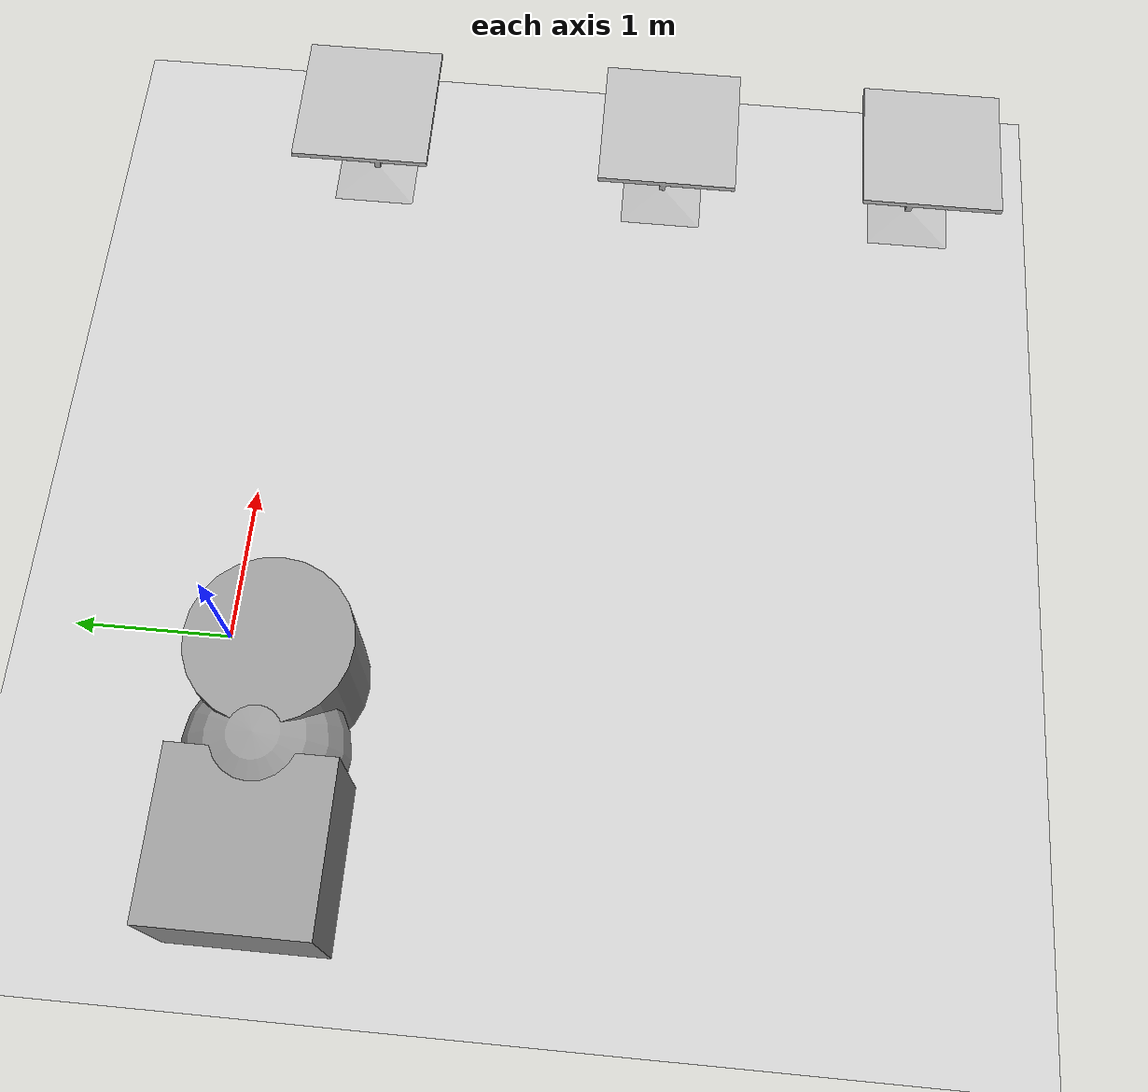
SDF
<sdf version="1.7">
 <world name="default">
  <light name="sun" type="directional">
   <pose>0 0 10 0 -0 0</pose>
   <diffuse>0.8 0.8 0.8 1</diffuse>
   <specular>0.2 0.2 0.2 1</specular>
   <attenuation>
    <range>1000</range>
    <constant>0.9</constant>
    <linear>0.01</linear>
    <quadratic>0.001</quadratic>
   </attenuation>
   <direction>-0.5 0.1 -0.9</direction>
   <spot><inner_angle>0</inner_angle><outer_angle>0</outer_angle><falloff>0</falloff></spot>
  </light>
  <model name="ground_plane">
   <static>1</static>
   <link name="link">
    <collision name="collision">
     <geometry><plane><normal>0 0 1</normal><size>100 100</size></plane></geometry>
     <surface><friction><ode><mu>100</mu><mu2>50</mu2></ode></friction></surface>
    </collision>
    <visual name="visual">
     <cast_shadows>0</cast_shadows>
     <geometry><plane><normal>0 0 1</normal><size>100 100</size></plane></geometry>
     <material>
      <script><uri>file://media/materials/scripts/gazebo.material</uri><name>Gazebo/Grey</name></script>
     </material>
    </visual>
   </link>
  </model>
  <gravity>0 0 -9.8</gravity>
  <magnetic_field>6e-06 2.3e-05 -4.2e-05</magnetic_field>
  <atmosphere type="adiabatic"/>
  <physics type="ode">
   <max_step_size>0.001</max_step_size>
   <real_time_factor>1</real_time_factor>
   <real_time_update_rate>1000</real_time_update_rate>
  </physics>
  <scene><ambient>0.4 0.4 0.4 1</ambient><background>0.7 0.7 0.7 1</background><shadows>1</shadows></scene>
  <audio><device>default</device></audio>
  <spherical_coordinates>
   <surface_model>EARTH_WGS84</surface_model>
   <latitude_deg>0</latitude_deg>
   <longitude_deg>0</longitude_deg>
   <elevation>0</elevation>
   <heading_deg>0</heading_deg>
  </spherical_coordinates>
  <model name="cafe_table">
   <static>1</static>
   <link name="link">
    <collision name="surface">
     <pose>0 0 0.755 0 -0 0</pose>
     <geometry><box><size>0.913 0.913 0.04</size></box></geometry>
    </collision>
    <collision name="column">
     <pose>0 0 0.37 0 -0 0</pose>
     <geometry><box><size>0.042 0.042 0.74</size></box></geometry>
    </collision>
    <collision name="base">
     <pose>0 0 0.02 0 -0 0</pose>
     <geometry><box><size>0.56 0.56 0.04</size></box></geometry>
    </collision>
    <visual name="visual">
     <geometry><mesh><uri>model://cafe_table/meshes/cafe_table.dae</uri></mesh></geometry>
    </visual>
   </link>
   <pose>3.6169 -0.448595 0 0 -0 0</pose>
  </model>
  <model name="cafe_table_0">
   <static>1</static>
   <link name="link">
    <collision name="surface">
     <pose>0 0 0.755 0 -0 0</pose>
     <geometry><box><size>0.913 0.913 0.04</size></box></geometry>
    </collision>
    <collision name="column">
     <pose>0 0 0.37 0 -0 0</pose>
     <geometry><box><size>0.042 0.042 0.74</size></box></geometry>
    </collision>
    <collision name="base">
     <pose>0 0 0.02 0 -0 0</pose>
     <geometry><box><size>0.56 0.56 0.04</size></box></geometry>
    </collision>
    <visual name="visual">
     <geometry><mesh><uri>model://cafe_table/meshes/cafe_table.dae</uri></mesh></geometry>
    </visual>
   </link>
   <pose>3.60987 -2.51622 0 0 -0 0</pose>
  </model>
  <model name="cafe_table_1">
   <static>1</static>
   <link name="link">
    <collision name="surface">
     <pose>0 0 0.755 0 -0 0</pose>
     <geometry><box><size>0.913 0.913 0.04</size></box></geometry>
    </collision>
    <collision name="column">
     <pose>0 0 0.37 0 -0 0</pose>
     <geometry><box><size>0.042 0.042 0.74</size></box></geometry>
    </collision>
    <collision name="base">
     <pose>0 0 0.02 0 -0 0</pose>
     <geometry><box><size>0.56 0.56 0.04</size></box></geometry>
    </collision>
    <visual name="visual">
     <geometry><mesh><uri>model://cafe_table/meshes/cafe_table.dae</uri></mesh></geometry>
    </visual>
   </link>
   <pose>3.59569 -4.28034 0 0 -0 0</pose>
  </model>
  <model name="unit_box">
   <pose>-1.37006 -0.417254 0.310521 0 -0 6e-06</pose>
   <link name="link">
    <inertial>
     <mass>1</mass>
     <inertia>
      <ixx>0.166667</ixx>
      <ixy>0</ixy>
      <ixz>0</ixz>
      <iyy>0.166667</iyy>
      <iyz>0</iyz>
      <izz>0.166667</izz>
     </inertia>
    </inertial>
    <collision name="collision"><geometry><box><size>1 1 1</size></box></geometry></collision>
    <visual name="visual">
     <geometry><box><size>1 1 1</size></box></geometry>
     <material>
      <script><name>Gazebo/Grey</name><uri>file://media/materials/scripts/gazebo.material</uri></script>
     </material>
    </visual>
   </link>
  </model>
  <model name="unit_sphere">
   <pose>-0.789702 -0.422646 0.389031 0 -0 0</pose>
   <link name="link">
    <inertial>
     <mass>1</mass>
     <inertia><ixx>0.1</ixx><ixy>0</ixy><ixz>0</ixz><iyy>0.1</iyy><iyz>0</iyz><izz>0.1</izz></inertia>
    </inertial>
    <collision name="collision"><geometry><sphere><radius>0.5</radius></sphere></geometry></collision>
    <visual name="visual">
     <geometry><sphere><radius>0.5</radius></sphere></geometry>
     <material>
      <script><name>Gazebo/Grey</name><uri>file://media/materials/scripts/gazebo.material</uri></script>
     </material>
    </visual>
   </link>
  </model>
  <model name="unit_cylinder">
   <pose>-0.238952 -0.418865 0.360521 -4e-06 5e-06 5.2e-05</pose>
   <link name="link">
    <inertial>
     <mass>1</mass>
     <inertia><ixx>0.145833</ixx><ixy>0</ixy><ixz>0</ixz><iyy>0.145833</iyy><iyz>0</iyz><izz>0.125</izz></inertia>
    </inertial>
    <collision name="collision">
     <geometry><cylinder><radius>0.499999</radius><length>0.999998</length></cylinder></geometry>
    </collision>
    <visual name="visual">
     <geometry><cylinder><radius>0.499999</radius><length>0.999998</length></cylinder></geometry>
     <material>
      <script><name>Gazebo/Grey</name><uri>file://media/materials/scripts/gazebo.material</uri></script>
     </material>
    </visual>
   </link>
  </model>
 </world>
</sdf>
